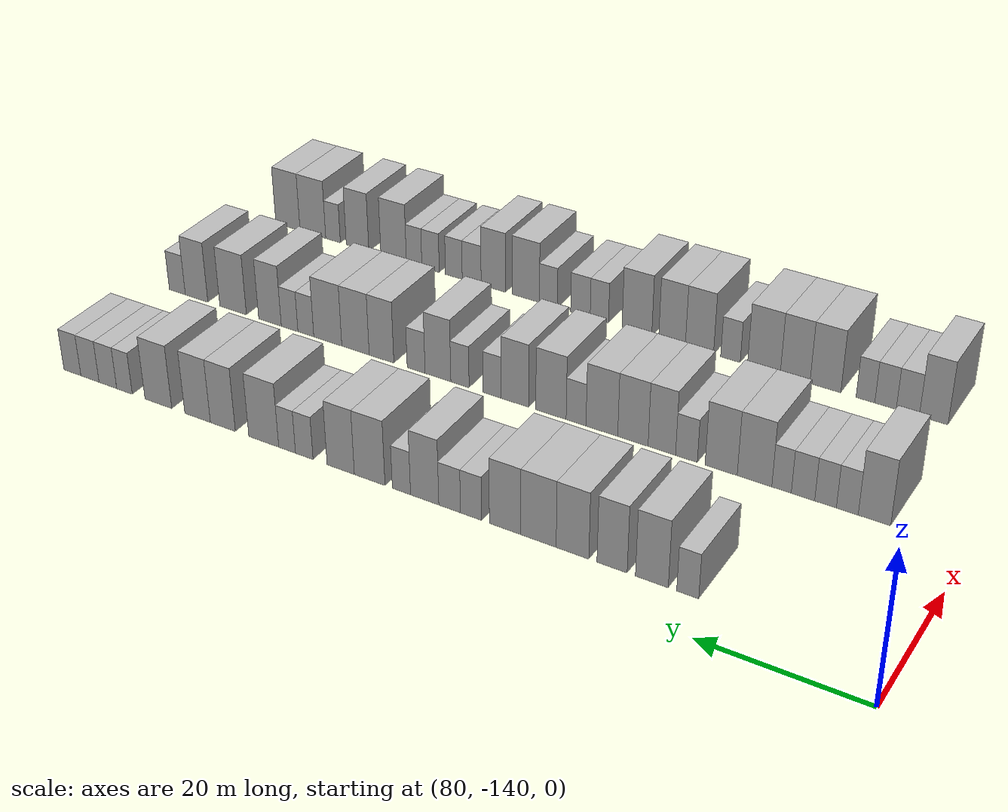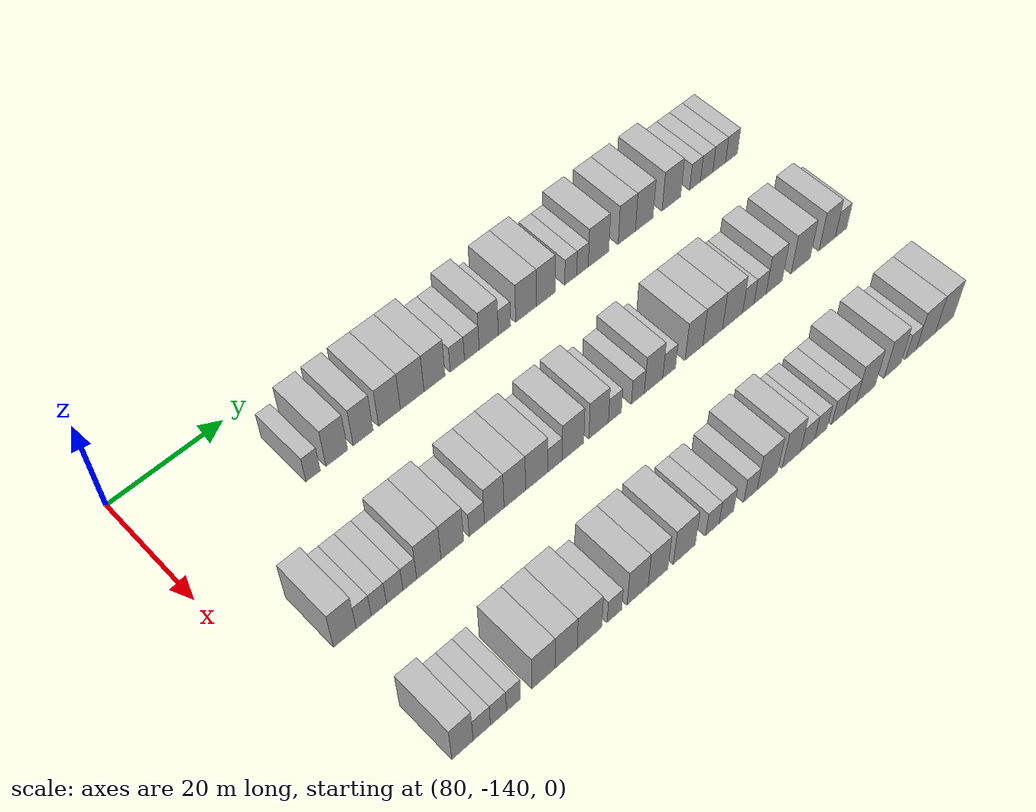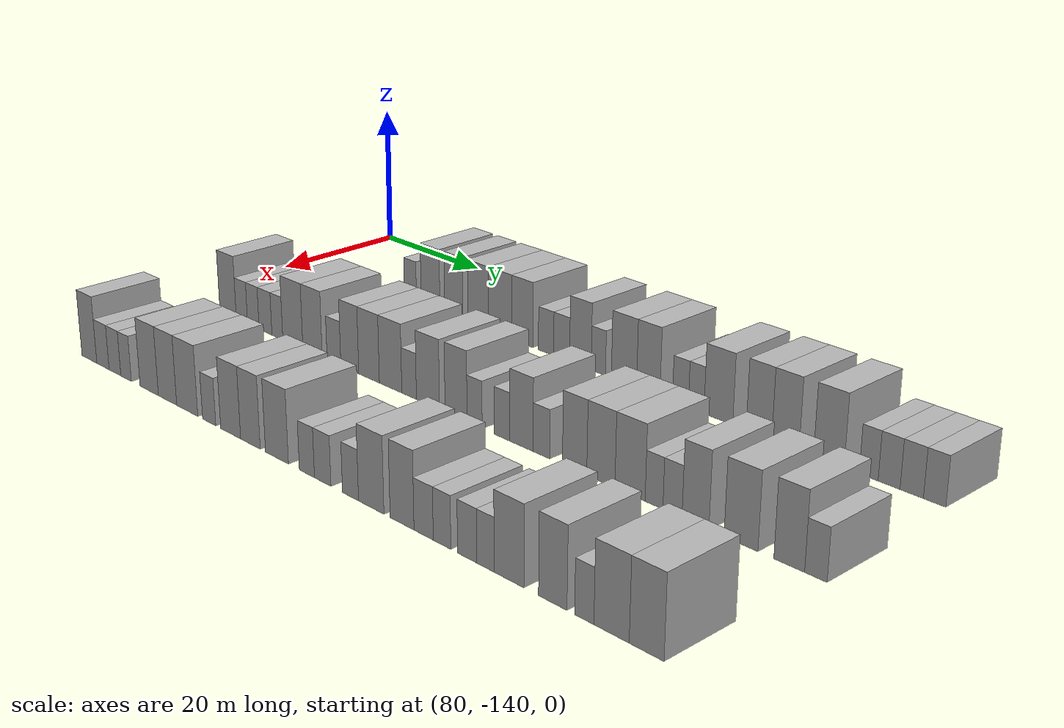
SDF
<sdf version="1.6">
 <world name="default">
  <model name="building_622">
   <static>1</static>
   <pose>91.0000 -116.5255 0 0.000000 0.000000 0.000000</pose>
   <link name="link">
    <pose>0 0 3.00 0 0 0</pose>
    <collision name="collision"><geometry><box><size>10.0000 2.5849 6.0000</size></box></geometry></collision>
    <visual name="visual">
     <cast_shadows>0</cast_shadows>
     <geometry><box><size>10.0000 2.5849 6.0000</size></box></geometry>
     <material>
      <script>
       <uri>model://HANNAS_wall/materials/scripts</uri>
       <uri>model://HANNAS_wall/materials/textures</uri>
       <name>vrc/HANNAS_wall</name>
      </script>
     </material>
    </visual>
   </link>
  </model>
  <model name="building_623">
   <static>1</static>
   <pose>91.0000 -112.2695 0 0.000000 0.000000 0.000000</pose>
   <link name="link">
    <pose>0 0 4.50 0 0 0</pose>
    <collision name="collision"><geometry><box><size>10.0000 3.9271 9.0000</size></box></geometry></collision>
    <visual name="visual">
     <cast_shadows>0</cast_shadows>
     <geometry><box><size>10.0000 3.9271 9.0000</size></box></geometry>
     <material>
      <script>
       <uri>model://HANNAS_wall/materials/scripts</uri>
       <uri>model://HANNAS_wall/materials/textures</uri>
       <name>vrc/HANNAS_wall</name>
      </script>
     </material>
    </visual>
   </link>
  </model>
  <model name="building_624">
   <static>1</static>
   <pose>91.0000 -107.4670 0 0.000000 0.000000 0.000000</pose>
   <link name="link">
    <pose>0 0 4.50 0 0 0</pose>
    <collision name="collision"><geometry><box><size>10.0000 3.6779 9.0000</size></box></geometry></collision>
    <visual name="visual">
     <cast_shadows>0</cast_shadows>
     <geometry><box><size>10.0000 3.6779 9.0000</size></box></geometry>
     <material>
      <script>
       <uri>model://HANNAS_wall/materials/scripts</uri>
       <uri>model://HANNAS_wall/materials/textures</uri>
       <name>vrc/HANNAS_wall</name>
      </script>
     </material>
    </visual>
   </link>
  </model>
  <model name="building_625">
   <static>1</static>
   <pose>91.0000 -102.5938 0 0.000000 0.000000 0.000000</pose>
   <link name="link">
    <pose>0 0 4.50 0 0 0</pose>
    <collision name="collision"><geometry><box><size>10.0000 4.0686 9.0000</size></box></geometry></collision>
    <visual name="visual">
     <cast_shadows>0</cast_shadows>
     <geometry><box><size>10.0000 4.0686 9.0000</size></box></geometry>
     <material>
      <script>
       <uri>model://HANNAS_wall/materials/scripts</uri>
       <uri>model://HANNAS_wall/materials/textures</uri>
       <name>vrc/HANNAS_wall</name>
      </script>
     </material>
    </visual>
   </link>
  </model>
  <model name="building_626">
   <static>1</static>
   <pose>91.0000 -98.3209 0 0.000000 0.000000 0.000000</pose>
   <link name="link">
    <pose>0 0 4.50 0 0 0</pose>
    <collision name="collision"><geometry><box><size>10.0000 4.4770 9.0000</size></box></geometry></collision>
    <visual name="visual">
     <cast_shadows>0</cast_shadows>
     <geometry><box><size>10.0000 4.4770 9.0000</size></box></geometry>
     <material>
      <script>
       <uri>model://HANNAS_wall/materials/scripts</uri>
       <uri>model://HANNAS_wall/materials/textures</uri>
       <name>vrc/HANNAS_wall</name>
      </script>
     </material>
    </visual>
   </link>
  </model>
  <model name="building_627">
   <static>1</static>
   <pose>91.0000 -94.0644 0 0.000000 0.000000 0.000000</pose>
   <link name="link">
    <pose>0 0 4.50 0 0 0</pose>
    <collision name="collision"><geometry><box><size>10.0000 4.0360 9.0000</size></box></geometry></collision>
    <visual name="visual">
     <cast_shadows>0</cast_shadows>
     <geometry><box><size>10.0000 4.0360 9.0000</size></box></geometry>
     <material>
      <script>
       <uri>model://HANNAS_wall/materials/scripts</uri>
       <uri>model://HANNAS_wall/materials/textures</uri>
       <name>vrc/HANNAS_wall</name>
      </script>
     </material>
    </visual>
   </link>
  </model>
  <model name="building_628">
   <static>1</static>
   <pose>91.0000 -89.6564 0 0.000000 0.000000 0.000000</pose>
   <link name="link">
    <pose>0 0 3.00 0 0 0</pose>
    <collision name="collision"><geometry><box><size>10.0000 2.7799 6.0000</size></box></geometry></collision>
    <visual name="visual">
     <cast_shadows>0</cast_shadows>
     <geometry><box><size>10.0000 2.7799 6.0000</size></box></geometry>
     <material>
      <script>
       <uri>model://HANNAS_wall/materials/scripts</uri>
       <uri>model://HANNAS_wall/materials/textures</uri>
       <name>vrc/HANNAS_wall</name>
      </script>
     </material>
    </visual>
   </link>
  </model>
  <model name="building_629">
   <static>1</static>
   <pose>91.0000 -86.8272 0 0.000000 0.000000 0.000000</pose>
   <link name="link">
    <pose>0 0 3.00 0 0 0</pose>
    <collision name="collision"><geometry><box><size>10.0000 2.8786 6.0000</size></box></geometry></collision>
    <visual name="visual">
     <cast_shadows>0</cast_shadows>
     <geometry><box><size>10.0000 2.8786 6.0000</size></box></geometry>
     <material>
      <script>
       <uri>model://HANNAS_wall/materials/scripts</uri>
       <uri>model://HANNAS_wall/materials/textures</uri>
       <name>vrc/HANNAS_wall</name>
      </script>
     </material>
    </visual>
   </link>
  </model>
  <model name="building_630">
   <static>1</static>
   <pose>91.0000 -83.4896 0 0.000000 0.000000 0.000000</pose>
   <link name="link">
    <pose>0 0 4.50 0 0 0</pose>
    <collision name="collision"><geometry><box><size>10.0000 3.7967 9.0000</size></box></geometry></collision>
    <visual name="visual">
     <cast_shadows>0</cast_shadows>
     <geometry><box><size>10.0000 3.7967 9.0000</size></box></geometry>
     <material>
      <script>
       <uri>model://HANNAS_wall/materials/scripts</uri>
       <uri>model://HANNAS_wall/materials/textures</uri>
       <name>vrc/HANNAS_wall</name>
      </script>
     </material>
    </visual>
   </link>
  </model>
  <model name="building_631">
   <static>1</static>
   <pose>91.0000 -80.3516 0 0.000000 0.000000 0.000000</pose>
   <link name="link">
    <pose>0 0 3.00 0 0 0</pose>
    <collision name="collision"><geometry><box><size>10.0000 2.4792 6.0000</size></box></geometry></collision>
    <visual name="visual">
     <cast_shadows>0</cast_shadows>
     <geometry><box><size>10.0000 2.4792 6.0000</size></box></geometry>
     <material>
      <script>
       <uri>model://HANNAS_wall/materials/scripts</uri>
       <uri>model://HANNAS_wall/materials/textures</uri>
       <name>vrc/HANNAS_wall</name>
      </script>
     </material>
    </visual>
   </link>
  </model>
  <model name="building_632">
   <static>1</static>
   <pose>91.0000 -75.9923 0 0.000000 0.000000 0.000000</pose>
   <link name="link">
    <pose>0 0 4.50 0 0 0</pose>
    <collision name="collision"><geometry><box><size>10.0000 4.2394 9.0000</size></box></geometry></collision>
    <visual name="visual">
     <cast_shadows>0</cast_shadows>
     <geometry><box><size>10.0000 4.2394 9.0000</size></box></geometry>
     <material>
      <script>
       <uri>model://HANNAS_wall/materials/scripts</uri>
       <uri>model://HANNAS_wall/materials/textures</uri>
       <name>vrc/HANNAS_wall</name>
      </script>
     </material>
    </visual>
   </link>
  </model>
  <model name="building_633">
   <static>1</static>
   <pose>91.0000 -71.9563 0 0.000000 0.000000 0.000000</pose>
   <link name="link">
    <pose>0 0 4.50 0 0 0</pose>
    <collision name="collision"><geometry><box><size>10.0000 3.8325 9.0000</size></box></geometry></collision>
    <visual name="visual">
     <cast_shadows>0</cast_shadows>
     <geometry><box><size>10.0000 3.8325 9.0000</size></box></geometry>
     <material>
      <script>
       <uri>model://HANNAS_wall/materials/scripts</uri>
       <uri>model://HANNAS_wall/materials/textures</uri>
       <name>vrc/HANNAS_wall</name>
      </script>
     </material>
    </visual>
   </link>
  </model>
  <model name="building_634">
   <static>1</static>
   <pose>91.0000 -66.7821 0 0.000000 0.000000 0.000000</pose>
   <link name="link">
    <pose>0 0 3.00 0 0 0</pose>
    <collision name="collision"><geometry><box><size>10.0000 2.5161 6.0000</size></box></geometry></collision>
    <visual name="visual">
     <cast_shadows>0</cast_shadows>
     <geometry><box><size>10.0000 2.5161 6.0000</size></box></geometry>
     <material>
      <script>
       <uri>model://HANNAS_wall/materials/scripts</uri>
       <uri>model://HANNAS_wall/materials/textures</uri>
       <name>vrc/HANNAS_wall</name>
      </script>
     </material>
    </visual>
   </link>
  </model>
  <model name="building_635">
   <static>1</static>
   <pose>91.0000 -64.3110 0 0.000000 0.000000 0.000000</pose>
   <link name="link">
    <pose>0 0 3.00 0 0 0</pose>
    <collision name="collision"><geometry><box><size>10.0000 2.4261 6.0000</size></box></geometry></collision>
    <visual name="visual">
     <cast_shadows>0</cast_shadows>
     <geometry><box><size>10.0000 2.4261 6.0000</size></box></geometry>
     <material>
      <script>
       <uri>model://HANNAS_wall/materials/scripts</uri>
       <uri>model://HANNAS_wall/materials/textures</uri>
       <name>vrc/HANNAS_wall</name>
      </script>
     </material>
    </visual>
   </link>
  </model>
  <model name="building_636">
   <static>1</static>
   <pose>91.0000 -60.9059 0 0.000000 0.000000 0.000000</pose>
   <link name="link">
    <pose>0 0 4.50 0 0 0</pose>
    <collision name="collision"><geometry><box><size>10.0000 4.3842 9.0000</size></box></geometry></collision>
    <visual name="visual">
     <cast_shadows>0</cast_shadows>
     <geometry><box><size>10.0000 4.3842 9.0000</size></box></geometry>
     <material>
      <script>
       <uri>model://HANNAS_wall/materials/scripts</uri>
       <uri>model://HANNAS_wall/materials/textures</uri>
       <name>vrc/HANNAS_wall</name>
      </script>
     </material>
    </visual>
   </link>
  </model>
  <model name="building_637">
   <static>1</static>
   <pose>91.0000 -54.8430 0 0.000000 0.000000 0.000000</pose>
   <link name="link">
    <pose>0 0 4.50 0 0 0</pose>
    <collision name="collision"><geometry><box><size>10.0000 3.7417 9.0000</size></box></geometry></collision>
    <visual name="visual">
     <cast_shadows>0</cast_shadows>
     <geometry><box><size>10.0000 3.7417 9.0000</size></box></geometry>
     <material>
      <script>
       <uri>model://HANNAS_wall/materials/scripts</uri>
       <uri>model://HANNAS_wall/materials/textures</uri>
       <name>vrc/HANNAS_wall</name>
      </script>
     </material>
    </visual>
   </link>
  </model>
  <model name="building_638">
   <static>1</static>
   <pose>91.0000 -51.0263 0 0.000000 0.000000 0.000000</pose>
   <link name="link">
    <pose>0 0 4.50 0 0 0</pose>
    <collision name="collision"><geometry><box><size>10.0000 3.8917 9.0000</size></box></geometry></collision>
    <visual name="visual">
     <cast_shadows>0</cast_shadows>
     <geometry><box><size>10.0000 3.8917 9.0000</size></box></geometry>
     <material>
      <script>
       <uri>model://HANNAS_wall/materials/scripts</uri>
       <uri>model://HANNAS_wall/materials/textures</uri>
       <name>vrc/HANNAS_wall</name>
      </script>
     </material>
    </visual>
   </link>
  </model>
  <model name="building_639">
   <static>1</static>
   <pose>91.0000 -44.9942 0 0.000000 0.000000 0.000000</pose>
   <link name="link">
    <pose>0 0 4.50 0 0 0</pose>
    <collision name="collision"><geometry><box><size>10.0000 4.1724 9.0000</size></box></geometry></collision>
    <visual name="visual">
     <cast_shadows>0</cast_shadows>
     <geometry><box><size>10.0000 4.1724 9.0000</size></box></geometry>
     <material>
      <script>
       <uri>model://HANNAS_wall/materials/scripts</uri>
       <uri>model://HANNAS_wall/materials/textures</uri>
       <name>vrc/HANNAS_wall</name>
      </script>
     </material>
    </visual>
   </link>
  </model>
  <model name="building_640">
   <static>1</static>
   <pose>91.0000 -39.6699 0 0.000000 0.000000 0.000000</pose>
   <link name="link">
    <pose>0 0 3.00 0 0 0</pose>
    <collision name="collision"><geometry><box><size>10.0000 2.4763 6.0000</size></box></geometry></collision>
    <visual name="visual">
     <cast_shadows>0</cast_shadows>
     <geometry><box><size>10.0000 2.4763 6.0000</size></box></geometry>
     <material>
      <script>
       <uri>model://HANNAS_wall/materials/scripts</uri>
       <uri>model://HANNAS_wall/materials/textures</uri>
       <name>vrc/HANNAS_wall</name>
      </script>
     </material>
    </visual>
   </link>
  </model>
  <model name="building_641">
   <static>1</static>
   <pose>91.0000 -37.0213 0 0.000000 0.000000 0.000000</pose>
   <link name="link">
    <pose>0 0 3.00 0 0 0</pose>
    <collision name="collision"><geometry><box><size>10.0000 2.8208 6.0000</size></box></geometry></collision>
    <visual name="visual">
     <cast_shadows>0</cast_shadows>
     <geometry><box><size>10.0000 2.8208 6.0000</size></box></geometry>
     <material>
      <script>
       <uri>model://HANNAS_wall/materials/scripts</uri>
       <uri>model://HANNAS_wall/materials/textures</uri>
       <name>vrc/HANNAS_wall</name>
      </script>
     </material>
    </visual>
   </link>
  </model>
  <model name="building_642">
   <static>1</static>
   <pose>91.0000 -34.1400 0 0.000000 0.000000 0.000000</pose>
   <link name="link">
    <pose>0 0 3.00 0 0 0</pose>
    <collision name="collision"><geometry><box><size>10.0000 2.9417 6.0000</size></box></geometry></collision>
    <visual name="visual">
     <cast_shadows>0</cast_shadows>
     <geometry><box><size>10.0000 2.9417 6.0000</size></box></geometry>
     <material>
      <script>
       <uri>model://HANNAS_wall/materials/scripts</uri>
       <uri>model://HANNAS_wall/materials/textures</uri>
       <name>vrc/HANNAS_wall</name>
      </script>
     </material>
    </visual>
   </link>
  </model>
  <model name="building_643">
   <static>1</static>
   <pose>91.0000 -31.2884 0 0.000000 0.000000 0.000000</pose>
   <link name="link">
    <pose>0 0 3.00 0 0 0</pose>
    <collision name="collision"><geometry><box><size>10.0000 2.7616 6.0000</size></box></geometry></collision>
    <visual name="visual">
     <cast_shadows>0</cast_shadows>
     <geometry><box><size>10.0000 2.7616 6.0000</size></box></geometry>
     <material>
      <script>
       <uri>model://HANNAS_wall/materials/scripts</uri>
       <uri>model://HANNAS_wall/materials/textures</uri>
       <name>vrc/HANNAS_wall</name>
      </script>
     </material>
    </visual>
   </link>
  </model>
  <model name="building_813">
   <static>1</static>
   <pose>113.0000 -129.0414 0 0.000000 0.000000 0.000000</pose>
   <link name="link">
    <pose>0 0 4.50 0 0 0</pose>
    <collision name="collision"><geometry><box><size>10.0000 3.8519 9.0000</size></box></geometry></collision>
    <visual name="visual">
     <cast_shadows>0</cast_shadows>
     <geometry><box><size>10.0000 3.8519 9.0000</size></box></geometry>
     <material>
      <script>
       <uri>model://HANNAS_wall/materials/scripts</uri>
       <uri>model://HANNAS_wall/materials/textures</uri>
       <name>vrc/HANNAS_wall</name>
      </script>
     </material>
    </visual>
   </link>
  </model>
  <model name="building_814">
   <static>1</static>
   <pose>113.0000 -125.8117 0 0.000000 0.000000 0.000000</pose>
   <link name="link">
    <pose>0 0 3.00 0 0 0</pose>
    <collision name="collision"><geometry><box><size>10.0000 2.6076 6.0000</size></box></geometry></collision>
    <visual name="visual">
     <cast_shadows>0</cast_shadows>
     <geometry><box><size>10.0000 2.6076 6.0000</size></box></geometry>
     <material>
      <script>
       <uri>model://HANNAS_wall/materials/scripts</uri>
       <uri>model://HANNAS_wall/materials/textures</uri>
       <name>vrc/HANNAS_wall</name>
      </script>
     </material>
    </visual>
   </link>
  </model>
  <model name="building_815">
   <static>1</static>
   <pose>113.0000 -123.1939 0 0.000000 0.000000 0.000000</pose>
   <link name="link">
    <pose>0 0 3.00 0 0 0</pose>
    <collision name="collision"><geometry><box><size>10.0000 2.6280 6.0000</size></box></geometry></collision>
    <visual name="visual">
     <cast_shadows>0</cast_shadows>
     <geometry><box><size>10.0000 2.6280 6.0000</size></box></geometry>
     <material>
      <script>
       <uri>model://HANNAS_wall/materials/scripts</uri>
       <uri>model://HANNAS_wall/materials/textures</uri>
       <name>vrc/HANNAS_wall</name>
      </script>
     </material>
    </visual>
   </link>
  </model>
  <model name="building_816">
   <static>1</static>
   <pose>113.0000 -120.4483 0 0.000000 0.000000 0.000000</pose>
   <link name="link">
    <pose>0 0 3.00 0 0 0</pose>
    <collision name="collision"><geometry><box><size>10.0000 2.8631 6.0000</size></box></geometry></collision>
    <visual name="visual">
     <cast_shadows>0</cast_shadows>
     <geometry><box><size>10.0000 2.8631 6.0000</size></box></geometry>
     <material>
      <script>
       <uri>model://HANNAS_wall/materials/scripts</uri>
       <uri>model://HANNAS_wall/materials/textures</uri>
       <name>vrc/HANNAS_wall</name>
      </script>
     </material>
    </visual>
   </link>
  </model>
  <model name="building_817">
   <static>1</static>
   <pose>113.0000 -117.8132 0 0.000000 0.000000 0.000000</pose>
   <link name="link">
    <pose>0 0 3.00 0 0 0</pose>
    <collision name="collision"><geometry><box><size>10.0000 2.4071 6.0000</size></box></geometry></collision>
    <visual name="visual">
     <cast_shadows>0</cast_shadows>
     <geometry><box><size>10.0000 2.4071 6.0000</size></box></geometry>
     <material>
      <script>
       <uri>model://HANNAS_wall/materials/scripts</uri>
       <uri>model://HANNAS_wall/materials/textures</uri>
       <name>vrc/HANNAS_wall</name>
      </script>
     </material>
    </visual>
   </link>
  </model>
  <model name="building_818">
   <static>1</static>
   <pose>113.0000 -114.4395 0 0.000000 0.000000 0.000000</pose>
   <link name="link">
    <pose>0 0 4.50 0 0 0</pose>
    <collision name="collision"><geometry><box><size>10.0000 4.3404 9.0000</size></box></geometry></collision>
    <visual name="visual">
     <cast_shadows>0</cast_shadows>
     <geometry><box><size>10.0000 4.3404 9.0000</size></box></geometry>
     <material>
      <script>
       <uri>model://HANNAS_wall/materials/scripts</uri>
       <uri>model://HANNAS_wall/materials/textures</uri>
       <name>vrc/HANNAS_wall</name>
      </script>
     </material>
    </visual>
   </link>
  </model>
  <model name="building_819">
   <static>1</static>
   <pose>113.0000 -110.2269 0 0.000000 0.000000 0.000000</pose>
   <link name="link">
    <pose>0 0 4.50 0 0 0</pose>
    <collision name="collision"><geometry><box><size>10.0000 4.0848 9.0000</size></box></geometry></collision>
    <visual name="visual">
     <cast_shadows>0</cast_shadows>
     <geometry><box><size>10.0000 4.0848 9.0000</size></box></geometry>
     <material>
      <script>
       <uri>model://HANNAS_wall/materials/scripts</uri>
       <uri>model://HANNAS_wall/materials/textures</uri>
       <name>vrc/HANNAS_wall</name>
      </script>
     </material>
    </visual>
   </link>
  </model>
  <model name="building_820">
   <static>1</static>
   <pose>113.0000 -105.7747 0 0.000000 0.000000 0.000000</pose>
   <link name="link">
    <pose>0 0 3.00 0 0 0</pose>
    <collision name="collision"><geometry><box><size>10.0000 2.8195 6.0000</size></box></geometry></collision>
    <visual name="visual">
     <cast_shadows>0</cast_shadows>
     <geometry><box><size>10.0000 2.8195 6.0000</size></box></geometry>
     <material>
      <script>
       <uri>model://HANNAS_wall/materials/scripts</uri>
       <uri>model://HANNAS_wall/materials/textures</uri>
       <name>vrc/HANNAS_wall</name>
      </script>
     </material>
    </visual>
   </link>
  </model>
  <model name="building_821">
   <static>1</static>
   <pose>113.0000 -102.5629 0 0.000000 0.000000 0.000000</pose>
   <link name="link">
    <pose>0 0 4.50 0 0 0</pose>
    <collision name="collision"><geometry><box><size>10.0000 3.6042 9.0000</size></box></geometry></collision>
    <visual name="visual">
     <cast_shadows>0</cast_shadows>
     <geometry><box><size>10.0000 3.6042 9.0000</size></box></geometry>
     <material>
      <script>
       <uri>model://HANNAS_wall/materials/scripts</uri>
       <uri>model://HANNAS_wall/materials/textures</uri>
       <name>vrc/HANNAS_wall</name>
      </script>
     </material>
    </visual>
   </link>
  </model>
  <model name="building_822">
   <static>1</static>
   <pose>113.0000 -98.7384 0 0.000000 0.000000 0.000000</pose>
   <link name="link">
    <pose>0 0 4.50 0 0 0</pose>
    <collision name="collision"><geometry><box><size>10.0000 4.0446 9.0000</size></box></geometry></collision>
    <visual name="visual">
     <cast_shadows>0</cast_shadows>
     <geometry><box><size>10.0000 4.0446 9.0000</size></box></geometry>
     <material>
      <script>
       <uri>model://HANNAS_wall/materials/scripts</uri>
       <uri>model://HANNAS_wall/materials/textures</uri>
       <name>vrc/HANNAS_wall</name>
      </script>
     </material>
    </visual>
   </link>
  </model>
  <model name="building_823">
   <static>1</static>
   <pose>113.0000 -94.5749 0 0.000000 0.000000 0.000000</pose>
   <link name="link">
    <pose>0 0 4.50 0 0 0</pose>
    <collision name="collision"><geometry><box><size>10.0000 4.2825 9.0000</size></box></geometry></collision>
    <visual name="visual">
     <cast_shadows>0</cast_shadows>
     <geometry><box><size>10.0000 4.2825 9.0000</size></box></geometry>
     <material>
      <script>
       <uri>model://HANNAS_wall/materials/scripts</uri>
       <uri>model://HANNAS_wall/materials/textures</uri>
       <name>vrc/HANNAS_wall</name>
      </script>
     </material>
    </visual>
   </link>
  </model>
  <model name="building_824">
   <static>1</static>
   <pose>113.0000 -91.0755 0 0.000000 0.000000 0.000000</pose>
   <link name="link">
    <pose>0 0 3.00 0 0 0</pose>
    <collision name="collision"><geometry><box><size>10.0000 2.7163 6.0000</size></box></geometry></collision>
    <visual name="visual">
     <cast_shadows>0</cast_shadows>
     <geometry><box><size>10.0000 2.7163 6.0000</size></box></geometry>
     <material>
      <script>
       <uri>model://HANNAS_wall/materials/scripts</uri>
       <uri>model://HANNAS_wall/materials/textures</uri>
       <name>vrc/HANNAS_wall</name>
      </script>
     </material>
    </visual>
   </link>
  </model>
  <model name="building_825">
   <static>1</static>
   <pose>113.0000 -87.6137 0 0.000000 0.000000 0.000000</pose>
   <link name="link">
    <pose>0 0 4.50 0 0 0</pose>
    <collision name="collision"><geometry><box><size>10.0000 4.2072 9.0000</size></box></geometry></collision>
    <visual name="visual">
     <cast_shadows>0</cast_shadows>
     <geometry><box><size>10.0000 4.2072 9.0000</size></box></geometry>
     <material>
      <script>
       <uri>model://HANNAS_wall/materials/scripts</uri>
       <uri>model://HANNAS_wall/materials/textures</uri>
       <name>vrc/HANNAS_wall</name>
      </script>
     </material>
    </visual>
   </link>
  </model>
  <model name="building_826">
   <static>1</static>
   <pose>113.0000 -82.5751 0 0.000000 0.000000 0.000000</pose>
   <link name="link">
    <pose>0 0 4.50 0 0 0</pose>
    <collision name="collision"><geometry><box><size>10.0000 3.8700 9.0000</size></box></geometry></collision>
    <visual name="visual">
     <cast_shadows>0</cast_shadows>
     <geometry><box><size>10.0000 3.8700 9.0000</size></box></geometry>
     <material>
      <script>
       <uri>model://HANNAS_wall/materials/scripts</uri>
       <uri>model://HANNAS_wall/materials/textures</uri>
       <name>vrc/HANNAS_wall</name>
      </script>
     </material>
    </visual>
   </link>
  </model>
  <model name="building_827">
   <static>1</static>
   <pose>113.0000 -79.3330 0 0.000000 0.000000 0.000000</pose>
   <link name="link">
    <pose>0 0 3.00 0 0 0</pose>
    <collision name="collision"><geometry><box><size>10.0000 2.6142 6.0000</size></box></geometry></collision>
    <visual name="visual">
     <cast_shadows>0</cast_shadows>
     <geometry><box><size>10.0000 2.6142 6.0000</size></box></geometry>
     <material>
      <script>
       <uri>model://HANNAS_wall/materials/scripts</uri>
       <uri>model://HANNAS_wall/materials/textures</uri>
       <name>vrc/HANNAS_wall</name>
      </script>
     </material>
    </visual>
   </link>
  </model>
  <model name="building_828">
   <static>1</static>
   <pose>113.0000 -74.6995 0 0.000000 0.000000 0.000000</pose>
   <link name="link">
    <pose>0 0 3.00 0 0 0</pose>
    <collision name="collision"><geometry><box><size>10.0000 2.6529 6.0000</size></box></geometry></collision>
    <visual name="visual">
     <cast_shadows>0</cast_shadows>
     <geometry><box><size>10.0000 2.6529 6.0000</size></box></geometry>
     <material>
      <script>
       <uri>model://HANNAS_wall/materials/scripts</uri>
       <uri>model://HANNAS_wall/materials/textures</uri>
       <name>vrc/HANNAS_wall</name>
      </script>
     </material>
    </visual>
   </link>
  </model>
  <model name="building_829">
   <static>1</static>
   <pose>113.0000 -71.4795 0 0.000000 0.000000 0.000000</pose>
   <link name="link">
    <pose>0 0 4.50 0 0 0</pose>
    <collision name="collision"><geometry><box><size>10.0000 3.7870 9.0000</size></box></geometry></collision>
    <visual name="visual">
     <cast_shadows>0</cast_shadows>
     <geometry><box><size>10.0000 3.7870 9.0000</size></box></geometry>
     <material>
      <script>
       <uri>model://HANNAS_wall/materials/scripts</uri>
       <uri>model://HANNAS_wall/materials/textures</uri>
       <name>vrc/HANNAS_wall</name>
      </script>
     </material>
    </visual>
   </link>
  </model>
  <model name="building_830">
   <static>1</static>
   <pose>113.0000 -68.2526 0 0.000000 0.000000 0.000000</pose>
   <link name="link">
    <pose>0 0 3.00 0 0 0</pose>
    <collision name="collision"><geometry><box><size>10.0000 2.6667 6.0000</size></box></geometry></collision>
    <visual name="visual">
     <cast_shadows>0</cast_shadows>
     <geometry><box><size>10.0000 2.6667 6.0000</size></box></geometry>
     <material>
      <script>
       <uri>model://HANNAS_wall/materials/scripts</uri>
       <uri>model://HANNAS_wall/materials/textures</uri>
       <name>vrc/HANNAS_wall</name>
      </script>
     </material>
    </visual>
   </link>
  </model>
  <model name="building_831">
   <static>1</static>
   <pose>113.0000 -63.0494 0 0.000000 0.000000 0.000000</pose>
   <link name="link">
    <pose>0 0 4.50 0 0 0</pose>
    <collision name="collision"><geometry><box><size>10.0000 3.7396 9.0000</size></box></geometry></collision>
    <visual name="visual">
     <cast_shadows>0</cast_shadows>
     <geometry><box><size>10.0000 3.7396 9.0000</size></box></geometry>
     <material>
      <script>
       <uri>model://HANNAS_wall/materials/scripts</uri>
       <uri>model://HANNAS_wall/materials/textures</uri>
       <name>vrc/HANNAS_wall</name>
      </script>
     </material>
    </visual>
   </link>
  </model>
  <model name="building_832">
   <static>1</static>
   <pose>113.0000 -59.0743 0 0.000000 0.000000 0.000000</pose>
   <link name="link">
    <pose>0 0 4.50 0 0 0</pose>
    <collision name="collision"><geometry><box><size>10.0000 4.2107 9.0000</size></box></geometry></collision>
    <visual name="visual">
     <cast_shadows>0</cast_shadows>
     <geometry><box><size>10.0000 4.2107 9.0000</size></box></geometry>
     <material>
      <script>
       <uri>model://HANNAS_wall/materials/scripts</uri>
       <uri>model://HANNAS_wall/materials/textures</uri>
       <name>vrc/HANNAS_wall</name>
      </script>
     </material>
    </visual>
   </link>
  </model>
  <model name="building_833">
   <static>1</static>
   <pose>113.0000 -54.7836 0 0.000000 0.000000 0.000000</pose>
   <link name="link">
    <pose>0 0 4.50 0 0 0</pose>
    <collision name="collision"><geometry><box><size>10.0000 4.3708 9.0000</size></box></geometry></collision>
    <visual name="visual">
     <cast_shadows>0</cast_shadows>
     <geometry><box><size>10.0000 4.3708 9.0000</size></box></geometry>
     <material>
      <script>
       <uri>model://HANNAS_wall/materials/scripts</uri>
       <uri>model://HANNAS_wall/materials/textures</uri>
       <name>vrc/HANNAS_wall</name>
      </script>
     </material>
    </visual>
   </link>
  </model>
  <model name="building_834">
   <static>1</static>
   <pose>113.0000 -51.3424 0 0.000000 0.000000 0.000000</pose>
   <link name="link">
    <pose>0 0 3.00 0 0 0</pose>
    <collision name="collision"><geometry><box><size>10.0000 2.5115 6.0000</size></box></geometry></collision>
    <visual name="visual">
     <cast_shadows>0</cast_shadows>
     <geometry><box><size>10.0000 2.5115 6.0000</size></box></geometry>
     <material>
      <script>
       <uri>model://HANNAS_wall/materials/scripts</uri>
       <uri>model://HANNAS_wall/materials/textures</uri>
       <name>vrc/HANNAS_wall</name>
      </script>
     </material>
    </visual>
   </link>
  </model>
  <model name="building_835">
   <static>1</static>
   <pose>113.0000 -48.7637 0 0.000000 0.000000 0.000000</pose>
   <link name="link">
    <pose>0 0 3.00 0 0 0</pose>
    <collision name="collision"><geometry><box><size>10.0000 2.6460 6.0000</size></box></geometry></collision>
    <visual name="visual">
     <cast_shadows>0</cast_shadows>
     <geometry><box><size>10.0000 2.6460 6.0000</size></box></geometry>
     <material>
      <script>
       <uri>model://HANNAS_wall/materials/scripts</uri>
       <uri>model://HANNAS_wall/materials/textures</uri>
       <name>vrc/HANNAS_wall</name>
      </script>
     </material>
    </visual>
   </link>
  </model>
  <model name="building_836">
   <static>1</static>
   <pose>113.0000 -45.6196 0 0.000000 0.000000 0.000000</pose>
   <link name="link">
    <pose>0 0 4.50 0 0 0</pose>
    <collision name="collision"><geometry><box><size>10.0000 3.6421 9.0000</size></box></geometry></collision>
    <visual name="visual">
     <cast_shadows>0</cast_shadows>
     <geometry><box><size>10.0000 3.6421 9.0000</size></box></geometry>
     <material>
      <script>
       <uri>model://HANNAS_wall/materials/scripts</uri>
       <uri>model://HANNAS_wall/materials/textures</uri>
       <name>vrc/HANNAS_wall</name>
      </script>
     </material>
    </visual>
   </link>
  </model>
  <model name="building_837">
   <static>1</static>
   <pose>113.0000 -39.6164 0 0.000000 0.000000 0.000000</pose>
   <link name="link">
    <pose>0 0 4.50 0 0 0</pose>
    <collision name="collision"><geometry><box><size>10.0000 4.3644 9.0000</size></box></geometry></collision>
    <visual name="visual">
     <cast_shadows>0</cast_shadows>
     <geometry><box><size>10.0000 4.3644 9.0000</size></box></geometry>
     <material>
      <script>
       <uri>model://HANNAS_wall/materials/scripts</uri>
       <uri>model://HANNAS_wall/materials/textures</uri>
       <name>vrc/HANNAS_wall</name>
      </script>
     </material>
    </visual>
   </link>
  </model>
  <model name="building_838">
   <static>1</static>
   <pose>113.0000 -33.5436 0 0.000000 0.000000 0.000000</pose>
   <link name="link">
    <pose>0 0 4.50 0 0 0</pose>
    <collision name="collision"><geometry><box><size>10.0000 3.7813 9.0000</size></box></geometry></collision>
    <visual name="visual">
     <cast_shadows>0</cast_shadows>
     <geometry><box><size>10.0000 3.7813 9.0000</size></box></geometry>
     <material>
      <script>
       <uri>model://HANNAS_wall/materials/scripts</uri>
       <uri>model://HANNAS_wall/materials/textures</uri>
       <name>vrc/HANNAS_wall</name>
      </script>
     </material>
    </visual>
   </link>
  </model>
  <model name="building_839">
   <static>1</static>
   <pose>113.0000 -30.3040 0 0.000000 0.000000 0.000000</pose>
   <link name="link">
    <pose>0 0 3.00 0 0 0</pose>
    <collision name="collision"><geometry><box><size>10.0000 2.6978 6.0000</size></box></geometry></collision>
    <visual name="visual">
     <cast_shadows>0</cast_shadows>
     <geometry><box><size>10.0000 2.6978 6.0000</size></box></geometry>
     <material>
      <script>
       <uri>model://HANNAS_wall/materials/scripts</uri>
       <uri>model://HANNAS_wall/materials/textures</uri>
       <name>vrc/HANNAS_wall</name>
      </script>
     </material>
    </visual>
   </link>
  </model>
  <model name="building_1003">
   <static>1</static>
   <pose>135.0000 -128.1640 0 0.000000 0.000000 0.000000</pose>
   <link name="link">
    <pose>0 0 4.50 0 0 0</pose>
    <collision name="collision"><geometry><box><size>10.0000 3.6059 9.0000</size></box></geometry></collision>
    <visual name="visual">
     <cast_shadows>0</cast_shadows>
     <geometry><box><size>10.0000 3.6059 9.0000</size></box></geometry>
     <material>
      <script>
       <uri>model://HANNAS_wall/materials/scripts</uri>
       <uri>model://HANNAS_wall/materials/textures</uri>
       <name>vrc/HANNAS_wall</name>
      </script>
     </material>
    </visual>
   </link>
  </model>
  <model name="building_1004">
   <static>1</static>
   <pose>135.0000 -124.8907 0 0.000000 0.000000 0.000000</pose>
   <link name="link">
    <pose>0 0 3.00 0 0 0</pose>
    <collision name="collision"><geometry><box><size>10.0000 2.9407 6.0000</size></box></geometry></collision>
    <visual name="visual">
     <cast_shadows>0</cast_shadows>
     <geometry><box><size>10.0000 2.9407 6.0000</size></box></geometry>
     <material>
      <script>
       <uri>model://HANNAS_wall/materials/scripts</uri>
       <uri>model://HANNAS_wall/materials/textures</uri>
       <name>vrc/HANNAS_wall</name>
      </script>
     </material>
    </visual>
   </link>
  </model>
  <model name="building_1005">
   <static>1</static>
   <pose>135.0000 -122.0437 0 0.000000 0.000000 0.000000</pose>
   <link name="link">
    <pose>0 0 3.00 0 0 0</pose>
    <collision name="collision"><geometry><box><size>10.0000 2.7533 6.0000</size></box></geometry></collision>
    <visual name="visual">
     <cast_shadows>0</cast_shadows>
     <geometry><box><size>10.0000 2.7533 6.0000</size></box></geometry>
     <material>
      <script>
       <uri>model://HANNAS_wall/materials/scripts</uri>
       <uri>model://HANNAS_wall/materials/textures</uri>
       <name>vrc/HANNAS_wall</name>
      </script>
     </material>
    </visual>
   </link>
  </model>
  <model name="building_1006">
   <static>1</static>
   <pose>135.0000 -119.4527 0 0.000000 0.000000 0.000000</pose>
   <link name="link">
    <pose>0 0 3.00 0 0 0</pose>
    <collision name="collision"><geometry><box><size>10.0000 2.4288 6.0000</size></box></geometry></collision>
    <visual name="visual">
     <cast_shadows>0</cast_shadows>
     <geometry><box><size>10.0000 2.4288 6.0000</size></box></geometry>
     <material>
      <script>
       <uri>model://HANNAS_wall/materials/scripts</uri>
       <uri>model://HANNAS_wall/materials/textures</uri>
       <name>vrc/HANNAS_wall</name>
      </script>
     </material>
    </visual>
   </link>
  </model>
  <model name="building_1007">
   <static>1</static>
   <pose>135.0000 -114.1908 0 0.000000 0.000000 0.000000</pose>
   <link name="link">
    <pose>0 0 4.50 0 0 0</pose>
    <collision name="collision"><geometry><box><size>10.0000 4.0950 9.0000</size></box></geometry></collision>
    <visual name="visual">
     <cast_shadows>0</cast_shadows>
     <geometry><box><size>10.0000 4.0950 9.0000</size></box></geometry>
     <material>
      <script>
       <uri>model://HANNAS_wall/materials/scripts</uri>
       <uri>model://HANNAS_wall/materials/textures</uri>
       <name>vrc/HANNAS_wall</name>
      </script>
     </material>
    </visual>
   </link>
  </model>
  <model name="building_1008">
   <static>1</static>
   <pose>135.0000 -110.1524 0 0.000000 0.000000 0.000000</pose>
   <link name="link">
    <pose>0 0 4.50 0 0 0</pose>
    <collision name="collision"><geometry><box><size>10.0000 3.9819 9.0000</size></box></geometry></collision>
    <visual name="visual">
     <cast_shadows>0</cast_shadows>
     <geometry><box><size>10.0000 3.9819 9.0000</size></box></geometry>
     <material>
      <script>
       <uri>model://HANNAS_wall/materials/scripts</uri>
       <uri>model://HANNAS_wall/materials/textures</uri>
       <name>vrc/HANNAS_wall</name>
      </script>
     </material>
    </visual>
   </link>
  </model>
  <model name="building_1009">
   <static>1</static>
   <pose>135.0000 -105.9285 0 0.000000 0.000000 0.000000</pose>
   <link name="link">
    <pose>0 0 4.50 0 0 0</pose>
    <collision name="collision"><geometry><box><size>10.0000 4.4659 9.0000</size></box></geometry></collision>
    <visual name="visual">
     <cast_shadows>0</cast_shadows>
     <geometry><box><size>10.0000 4.4659 9.0000</size></box></geometry>
     <material>
      <script>
       <uri>model://HANNAS_wall/materials/scripts</uri>
       <uri>model://HANNAS_wall/materials/textures</uri>
       <name>vrc/HANNAS_wall</name>
      </script>
     </material>
    </visual>
   </link>
  </model>
  <model name="building_1010">
   <static>1</static>
   <pose>135.0000 -101.3421 0 0.000000 0.000000 0.000000</pose>
   <link name="link">
    <pose>0 0 3.00 0 0 0</pose>
    <collision name="collision"><geometry><box><size>10.0000 2.7069 6.0000</size></box></geometry></collision>
    <visual name="visual">
     <cast_shadows>0</cast_shadows>
     <geometry><box><size>10.0000 2.7069 6.0000</size></box></geometry>
     <material>
      <script>
       <uri>model://HANNAS_wall/materials/scripts</uri>
       <uri>model://HANNAS_wall/materials/textures</uri>
       <name>vrc/HANNAS_wall</name>
      </script>
     </material>
    </visual>
   </link>
  </model>
  <model name="building_1011">
   <static>1</static>
   <pose>135.0000 -97.0069 0 0.000000 0.000000 0.000000</pose>
   <link name="link">
    <pose>0 0 4.50 0 0 0</pose>
    <collision name="collision"><geometry><box><size>10.0000 3.9634 9.0000</size></box></geometry></collision>
    <visual name="visual">
     <cast_shadows>0</cast_shadows>
     <geometry><box><size>10.0000 3.9634 9.0000</size></box></geometry>
     <material>
      <script>
       <uri>model://HANNAS_wall/materials/scripts</uri>
       <uri>model://HANNAS_wall/materials/textures</uri>
       <name>vrc/HANNAS_wall</name>
      </script>
     </material>
    </visual>
   </link>
  </model>
  <model name="building_1012">
   <static>1</static>
   <pose>135.0000 -93.1247 0 0.000000 0.000000 0.000000</pose>
   <link name="link">
    <pose>0 0 4.50 0 0 0</pose>
    <collision name="collision"><geometry><box><size>10.0000 3.8011 9.0000</size></box></geometry></collision>
    <visual name="visual">
     <cast_shadows>0</cast_shadows>
     <geometry><box><size>10.0000 3.8011 9.0000</size></box></geometry>
     <material>
      <script>
       <uri>model://HANNAS_wall/materials/scripts</uri>
       <uri>model://HANNAS_wall/materials/textures</uri>
       <name>vrc/HANNAS_wall</name>
      </script>
     </material>
    </visual>
   </link>
  </model>
  <model name="building_1013">
   <static>1</static>
   <pose>135.0000 -88.0724 0 0.000000 0.000000 0.000000</pose>
   <link name="link">
    <pose>0 0 4.50 0 0 0</pose>
    <collision name="collision"><geometry><box><size>10.0000 4.3034 9.0000</size></box></geometry></collision>
    <visual name="visual">
     <cast_shadows>0</cast_shadows>
     <geometry><box><size>10.0000 4.3034 9.0000</size></box></geometry>
     <material>
      <script>
       <uri>model://HANNAS_wall/materials/scripts</uri>
       <uri>model://HANNAS_wall/materials/textures</uri>
       <name>vrc/HANNAS_wall</name>
      </script>
     </material>
    </visual>
   </link>
  </model>
  <model name="building_1014">
   <static>1</static>
   <pose>135.0000 -82.5666 0 0.000000 0.000000 0.000000</pose>
   <link name="link">
    <pose>0 0 3.00 0 0 0</pose>
    <collision name="collision"><geometry><box><size>10.0000 2.7082 6.0000</size></box></geometry></collision>
    <visual name="visual">
     <cast_shadows>0</cast_shadows>
     <geometry><box><size>10.0000 2.7082 6.0000</size></box></geometry>
     <material>
      <script>
       <uri>model://HANNAS_wall/materials/scripts</uri>
       <uri>model://HANNAS_wall/materials/textures</uri>
       <name>vrc/HANNAS_wall</name>
      </script>
     </material>
    </visual>
   </link>
  </model>
  <model name="building_1015">
   <static>1</static>
   <pose>135.0000 -79.7579 0 0.000000 0.000000 0.000000</pose>
   <link name="link">
    <pose>0 0 3.00 0 0 0</pose>
    <collision name="collision"><geometry><box><size>10.0000 2.9092 6.0000</size></box></geometry></collision>
    <visual name="visual">
     <cast_shadows>0</cast_shadows>
     <geometry><box><size>10.0000 2.9092 6.0000</size></box></geometry>
     <material>
      <script>
       <uri>model://HANNAS_wall/materials/scripts</uri>
       <uri>model://HANNAS_wall/materials/textures</uri>
       <name>vrc/HANNAS_wall</name>
      </script>
     </material>
    </visual>
   </link>
  </model>
  <model name="building_1016">
   <static>1</static>
   <pose>135.0000 -74.9427 0 0.000000 0.000000 0.000000</pose>
   <link name="link">
    <pose>0 0 3.00 0 0 0</pose>
    <collision name="collision"><geometry><box><size>10.0000 2.7213 6.0000</size></box></geometry></collision>
    <visual name="visual">
     <cast_shadows>0</cast_shadows>
     <geometry><box><size>10.0000 2.7213 6.0000</size></box></geometry>
     <material>
      <script>
       <uri>model://HANNAS_wall/materials/scripts</uri>
       <uri>model://HANNAS_wall/materials/textures</uri>
       <name>vrc/HANNAS_wall</name>
      </script>
     </material>
    </visual>
   </link>
  </model>
  <model name="building_1017">
   <static>1</static>
   <pose>135.0000 -71.4746 0 0.000000 0.000000 0.000000</pose>
   <link name="link">
    <pose>0 0 4.50 0 0 0</pose>
    <collision name="collision"><geometry><box><size>10.0000 4.2149 9.0000</size></box></geometry></collision>
    <visual name="visual">
     <cast_shadows>0</cast_shadows>
     <geometry><box><size>10.0000 4.2149 9.0000</size></box></geometry>
     <material>
      <script>
       <uri>model://HANNAS_wall/materials/scripts</uri>
       <uri>model://HANNAS_wall/materials/textures</uri>
       <name>vrc/HANNAS_wall</name>
      </script>
     </material>
    </visual>
   </link>
  </model>
  <model name="building_1018">
   <static>1</static>
   <pose>135.0000 -66.4623 0 0.000000 0.000000 0.000000</pose>
   <link name="link">
    <pose>0 0 4.50 0 0 0</pose>
    <collision name="collision"><geometry><box><size>10.0000 3.8099 9.0000</size></box></geometry></collision>
    <visual name="visual">
     <cast_shadows>0</cast_shadows>
     <geometry><box><size>10.0000 3.8099 9.0000</size></box></geometry>
     <material>
      <script>
       <uri>model://HANNAS_wall/materials/scripts</uri>
       <uri>model://HANNAS_wall/materials/textures</uri>
       <name>vrc/HANNAS_wall</name>
      </script>
     </material>
    </visual>
   </link>
  </model>
  <model name="building_1019">
   <static>1</static>
   <pose>135.0000 -63.0639 0 0.000000 0.000000 0.000000</pose>
   <link name="link">
    <pose>0 0 3.00 0 0 0</pose>
    <collision name="collision"><geometry><box><size>10.0000 2.9868 6.0000</size></box></geometry></collision>
    <visual name="visual">
     <cast_shadows>0</cast_shadows>
     <geometry><box><size>10.0000 2.9868 6.0000</size></box></geometry>
     <material>
      <script>
       <uri>model://HANNAS_wall/materials/scripts</uri>
       <uri>model://HANNAS_wall/materials/textures</uri>
       <name>vrc/HANNAS_wall</name>
      </script>
     </material>
    </visual>
   </link>
  </model>
  <model name="building_1020">
   <static>1</static>
   <pose>135.0000 -60.2368 0 0.000000 0.000000 0.000000</pose>
   <link name="link">
    <pose>0 0 3.00 0 0 0</pose>
    <collision name="collision"><geometry><box><size>10.0000 2.6675 6.0000</size></box></geometry></collision>
    <visual name="visual">
     <cast_shadows>0</cast_shadows>
     <geometry><box><size>10.0000 2.6675 6.0000</size></box></geometry>
     <material>
      <script>
       <uri>model://HANNAS_wall/materials/scripts</uri>
       <uri>model://HANNAS_wall/materials/textures</uri>
       <name>vrc/HANNAS_wall</name>
      </script>
     </material>
    </visual>
   </link>
  </model>
  <model name="building_1021">
   <static>1</static>
   <pose>135.0000 -56.4990 0 0.000000 0.000000 0.000000</pose>
   <link name="link">
    <pose>0 0 3.00 0 0 0</pose>
    <collision name="collision"><geometry><box><size>10.0000 2.8081 6.0000</size></box></geometry></collision>
    <visual name="visual">
     <cast_shadows>0</cast_shadows>
     <geometry><box><size>10.0000 2.8081 6.0000</size></box></geometry>
     <material>
      <script>
       <uri>model://HANNAS_wall/materials/scripts</uri>
       <uri>model://HANNAS_wall/materials/textures</uri>
       <name>vrc/HANNAS_wall</name>
      </script>
     </material>
    </visual>
   </link>
  </model>
  <model name="building_1022">
   <static>1</static>
   <pose>135.0000 -53.8384 0 0.000000 0.000000 0.000000</pose>
   <link name="link">
    <pose>0 0 3.00 0 0 0</pose>
    <collision name="collision"><geometry><box><size>10.0000 2.5131 6.0000</size></box></geometry></collision>
    <visual name="visual">
     <cast_shadows>0</cast_shadows>
     <geometry><box><size>10.0000 2.5131 6.0000</size></box></geometry>
     <material>
      <script>
       <uri>model://HANNAS_wall/materials/scripts</uri>
       <uri>model://HANNAS_wall/materials/textures</uri>
       <name>vrc/HANNAS_wall</name>
      </script>
     </material>
    </visual>
   </link>
  </model>
  <model name="building_1023">
   <static>1</static>
   <pose>135.0000 -50.4780 0 0.000000 0.000000 0.000000</pose>
   <link name="link">
    <pose>0 0 4.50 0 0 0</pose>
    <collision name="collision"><geometry><box><size>10.0000 4.2078 9.0000</size></box></geometry></collision>
    <visual name="visual">
     <cast_shadows>0</cast_shadows>
     <geometry><box><size>10.0000 4.2078 9.0000</size></box></geometry>
     <material>
      <script>
       <uri>model://HANNAS_wall/materials/scripts</uri>
       <uri>model://HANNAS_wall/materials/textures</uri>
       <name>vrc/HANNAS_wall</name>
      </script>
     </material>
    </visual>
   </link>
  </model>
  <model name="building_1024">
   <static>1</static>
   <pose>135.0000 -44.4752 0 0.000000 0.000000 0.000000</pose>
   <link name="link">
    <pose>0 0 4.50 0 0 0</pose>
    <collision name="collision"><geometry><box><size>10.0000 3.7979 9.0000</size></box></geometry></collision>
    <visual name="visual">
     <cast_shadows>0</cast_shadows>
     <geometry><box><size>10.0000 3.7979 9.0000</size></box></geometry>
     <material>
      <script>
       <uri>model://HANNAS_wall/materials/scripts</uri>
       <uri>model://HANNAS_wall/materials/textures</uri>
       <name>vrc/HANNAS_wall</name>
      </script>
     </material>
    </visual>
   </link>
  </model>
  <model name="building_1025">
   <static>1</static>
   <pose>135.0000 -40.3351 0 0.000000 0.000000 0.000000</pose>
   <link name="link">
    <pose>0 0 3.00 0 0 0</pose>
    <collision name="collision"><geometry><box><size>10.0000 2.4823 6.0000</size></box></geometry></collision>
    <visual name="visual">
     <cast_shadows>0</cast_shadows>
     <geometry><box><size>10.0000 2.4823 6.0000</size></box></geometry>
     <material>
      <script>
       <uri>model://HANNAS_wall/materials/scripts</uri>
       <uri>model://HANNAS_wall/materials/textures</uri>
       <name>vrc/HANNAS_wall</name>
      </script>
     </material>
    </visual>
   </link>
  </model>
  <model name="building_1026">
   <static>1</static>
   <pose>135.0000 -36.8822 0 0.000000 0.000000 0.000000</pose>
   <link name="link">
    <pose>0 0 4.50 0 0 0</pose>
    <collision name="collision"><geometry><box><size>10.0000 4.4235 9.0000</size></box></geometry></collision>
    <visual name="visual">
     <cast_shadows>0</cast_shadows>
     <geometry><box><size>10.0000 4.4235 9.0000</size></box></geometry>
     <material>
      <script>
       <uri>model://HANNAS_wall/materials/scripts</uri>
       <uri>model://HANNAS_wall/materials/textures</uri>
       <name>vrc/HANNAS_wall</name>
      </script>
     </material>
    </visual>
   </link>
  </model>
  <model name="building_1027">
   <static>1</static>
   <pose>135.0000 -32.5674 0 0.000000 0.000000 0.000000</pose>
   <link name="link">
    <pose>0 0 4.50 0 0 0</pose>
    <collision name="collision"><geometry><box><size>10.0000 4.2062 9.0000</size></box></geometry></collision>
    <visual name="visual">
     <cast_shadows>0</cast_shadows>
     <geometry><box><size>10.0000 4.2062 9.0000</size></box></geometry>
     <material>
      <script>
       <uri>model://HANNAS_wall/materials/scripts</uri>
       <uri>model://HANNAS_wall/materials/textures</uri>
       <name>vrc/HANNAS_wall</name>
      </script>
     </material>
    </visual>
   </link>
  </model>
 </world>
</sdf>
